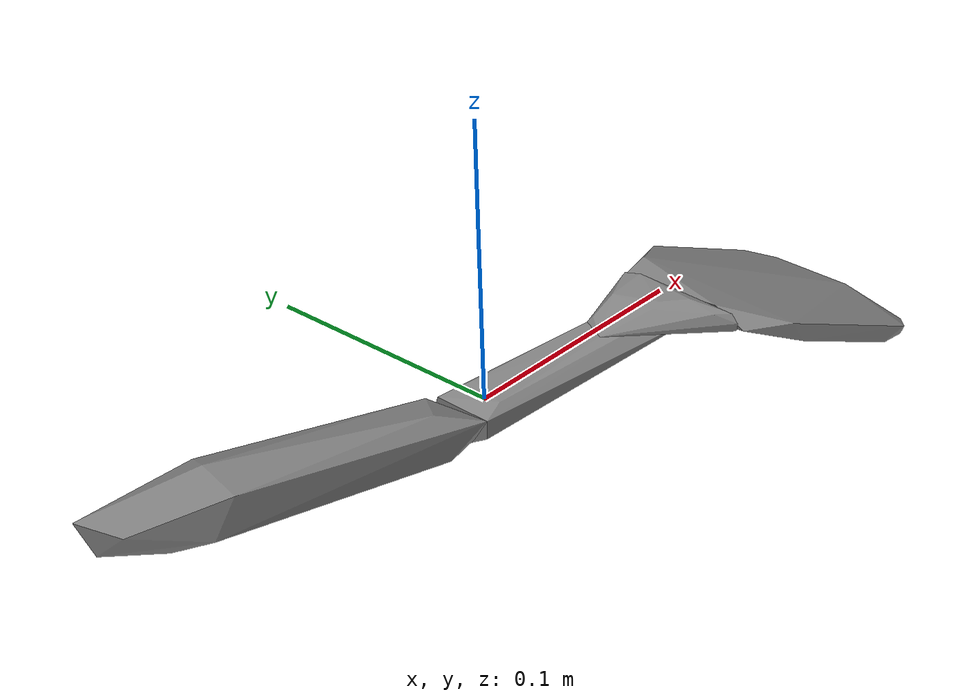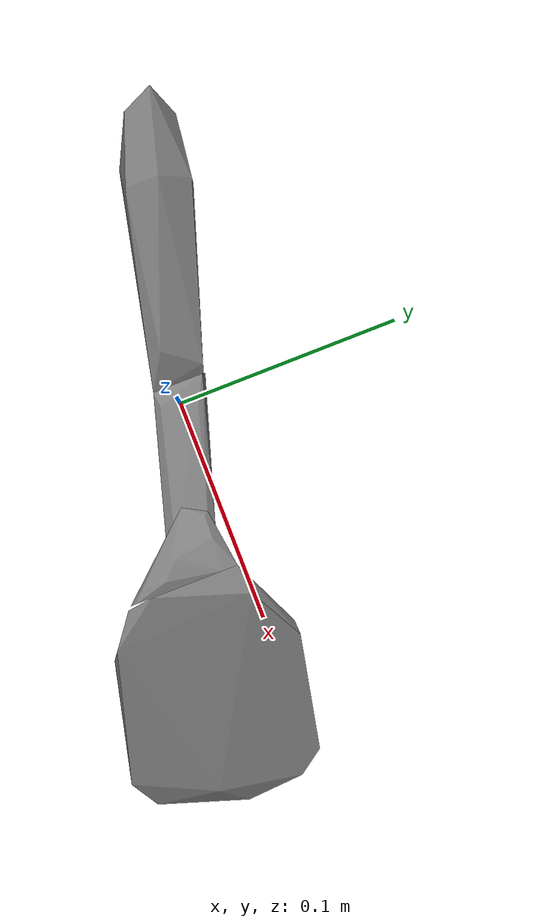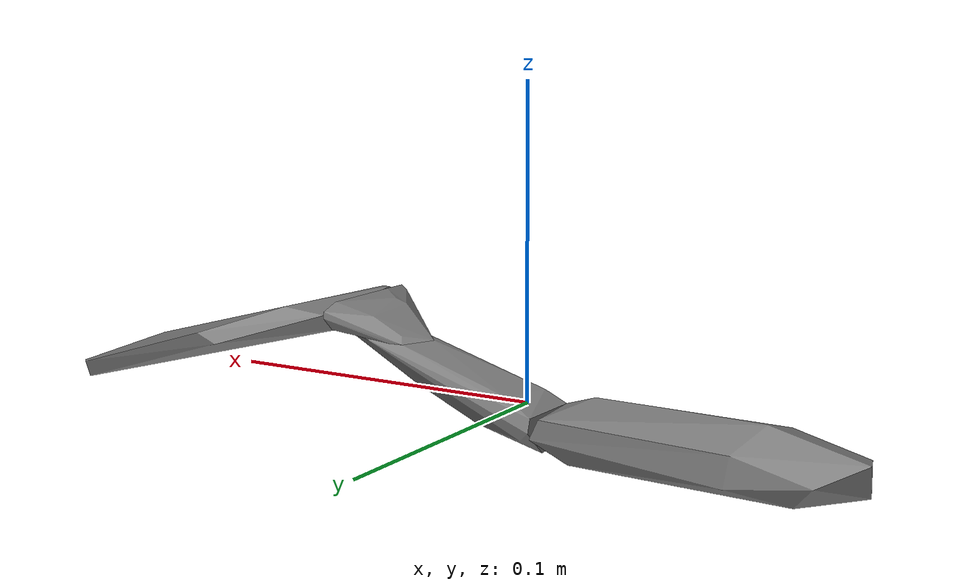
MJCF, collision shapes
<mujoco model="spatula">
  <compiler angle="radian" />

  <asset>
    <mesh name="spatula_visual_mesh" file="spatula/textured.obj" />
    <mesh name="spatula_collision_mesh_0" file="spatula/textured_coacd_0.stl" />
    <mesh name="spatula_collision_mesh_1" file="spatula/textured_coacd_1.stl" />
    <mesh name="spatula_collision_mesh_2" file="spatula/textured_coacd_2.stl" />
    <mesh name="spatula_collision_mesh_3" file="spatula/textured_coacd_3.stl" />
    <texture name="spatula_texture" type="2d" file="spatula/texture_map.png" />
    <material name="spatula_material" texture="spatula_texture" />
  </asset>

  <worldbody>
    <body name="spatula" pos="0 0 0" euler="0 0 0">
      <freejoint name="spatula_joint" />
      <geom name="spatula_visual_geom" type="mesh" mesh="spatula_visual_mesh" material="spatula_material" pos="0.046581043820340895 0.07860574843636466 -0.013189187861051138" euler="0 0 0" contype="0" conaffinity="0" group="0" />
      <geom name="spatula_collision_geom_0" type="mesh" mesh="spatula_collision_mesh_0" pos="0.046581043820340895 0.07860574843636466 -0.013189187861051138" euler="0 0 0" contype="1" conaffinity="1" group="3" />
      <geom name="spatula_collision_geom_1" type="mesh" mesh="spatula_collision_mesh_1" pos="0.046581043820340895 0.07860574843636466 -0.013189187861051138" euler="0 0 0" contype="1" conaffinity="1" group="3" />
      <geom name="spatula_collision_geom_2" type="mesh" mesh="spatula_collision_mesh_2" pos="0.046581043820340895 0.07860574843636466 -0.013189187861051138" euler="0 0 0" contype="1" conaffinity="1" group="3" />
      <geom name="spatula_collision_geom_3" type="mesh" mesh="spatula_collision_mesh_3" pos="0.046581043820340895 0.07860574843636466 -0.013189187861051138" euler="0 0 0" contype="1" conaffinity="1" group="3" />
      <inertial pos="0 0 0" euler="0 0 0" mass="0.0515" diaginertia="0.001 0.001 0.001" />
    </body>
  </worldbody>
</mujoco>
